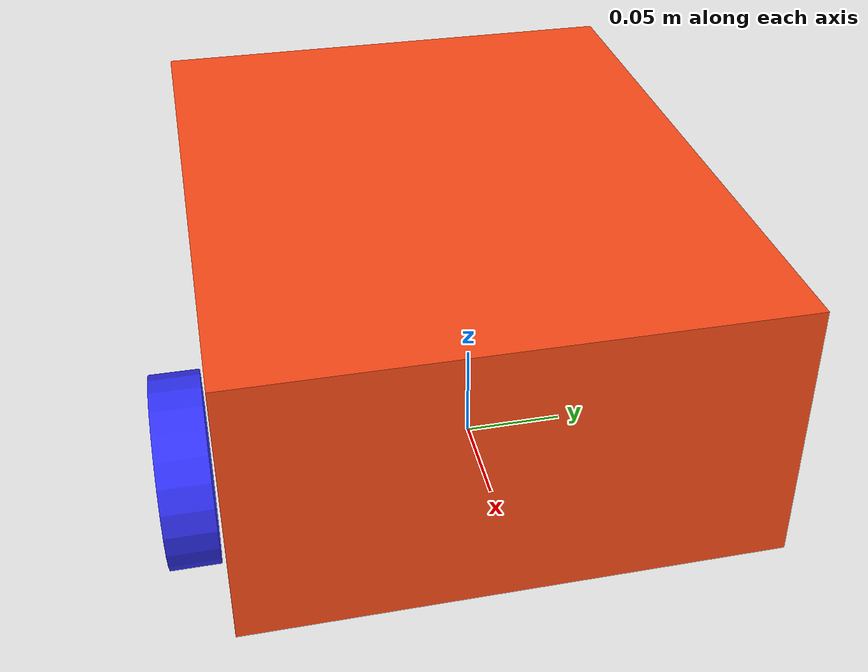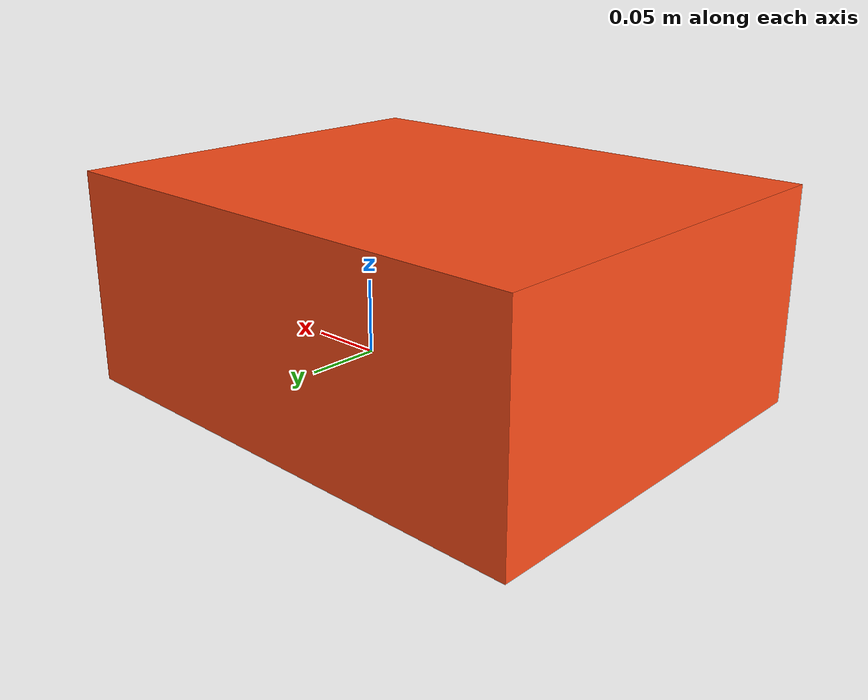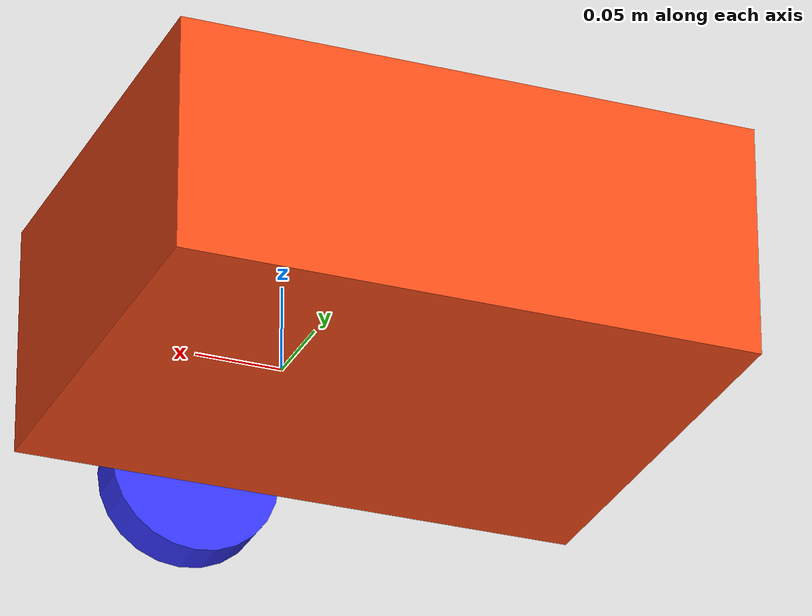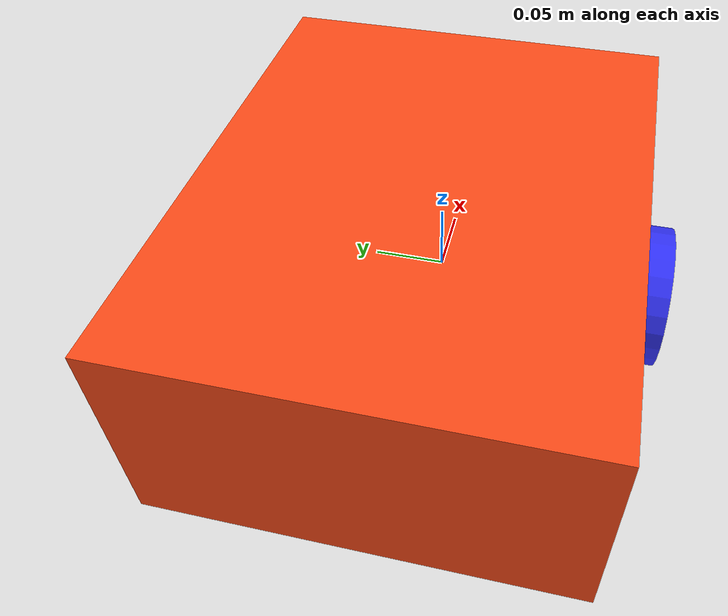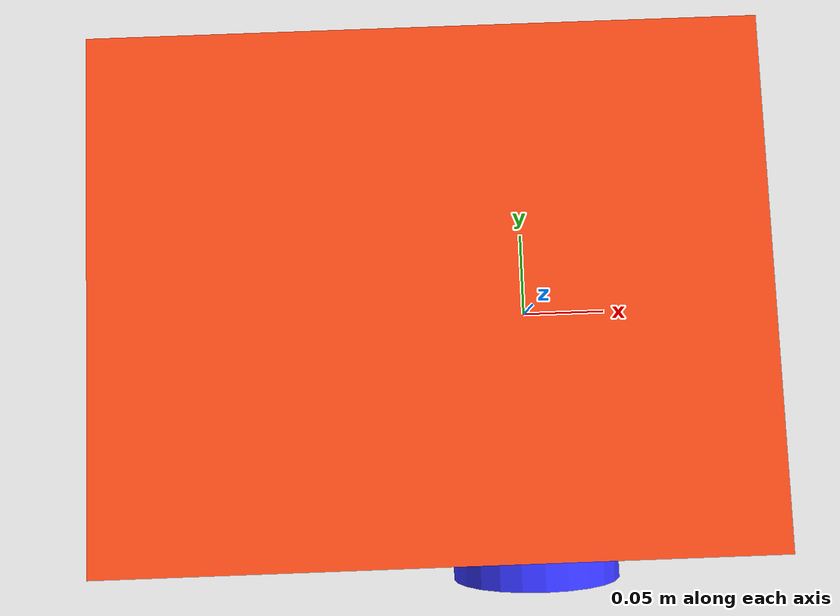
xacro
<?xml version="1.0"?>
<robot xmlns:xacro="http://www.ros.org/wiki/xacro" >

    <xacro:include filename="inertial_macros.xacro"/>

    <!-- The importance of Xacro is that it allows you to define variables that you can
    use in your xacro file, this allows you to make changes quite easily -->
    <xacro:property name="chassis_length" value="0.335"/>
    <xacro:property name="chassis_width" value="0.265"/>
    <xacro:property name="chassis_height" value="0.138"/>
    <xacro:property name="chassis_mass" value="1.0"/>
    <xacro:property name="wheel_radius" value="0.05"/>
    <xacro:property name="wheel_thickness" value="0.026"/>
    <xacro:property name="wheel_mass" value="0.05"/>
    <xacro:property name="wheel_offset_x" value="0.226"/>
    <xacro:property name="wheel_offset_y" value="0.1485"/>
    <xacro:property name="wheel_offset_z" value="0.01"/>
    <xacro:property name="caster_wheel_radius" value="0.03"/>
    <xacro:property name="caster_wheel_mass" value="0.01"/>
    <xacro:property name="caster_wheel_offset_x" value="0.075"/>
    <xacro:property name="caster_wheel_offset_z" value="${wheel_offset_z - wheel_radius + caster_wheel_radius}"/>

    <!-- material tags allow you to assign color to your robot links which are visible in Rviz,
    However, for gazebo you have to assign color in a different way as you will observe in this file -->
    <material name="white">
        <color rgba="1 1 1 1" />
    </material>

    <material name="orange">
        <color rgba="1 0.3 0.1 1"/>
    </material>

    <material name="blue">
        <color rgba="0.2 0.2 1 1"/>
    </material>

    <material name="black">
        <color rgba="0 0 0 1"/>
    </material>

    <material name="red">
        <color rgba="1 0 0 1"/>
    </material>

    <!-- BASE LINK -->
    <!-- Base link is the link that is attached to the robot, it is the parent link of all other links in the robot,
    You donot have to assign any geometry to the base link, it is just a reference link -->

    <link name="base_link">
    </link>

    <!-- BASE_FOOTPRINT LINK -->

    <link name="base_footprint">
    </link>

    <joint name="base_footprint_joint" type="fixed">
        <parent link="base_link"/>
        <child link="base_footprint"/>
        <origin xyz="0 0 0" rpy="0 0 0"/>
    </joint>

    <!-- CHASSIS LINK -->
    <link name="chassis">
        <visual>
            <origin xyz="${chassis_length/2} 0 ${chassis_height/2}"/>
            <geometry>
                <box size="${chassis_length} ${chassis_width} ${chassis_height}"/>
            </geometry>
            <material name="orange"/>
        </visual>
        <collision>
            <origin xyz="${chassis_length/2} 0 ${chassis_height/2}"/>
            <geometry>
                <box size="${chassis_length} ${chassis_width} ${chassis_height}"/>
            </geometry>
        </collision>
        <xacro:inertial_box mass="0.5" x="${chassis_length}" y="${chassis_width}" z="${chassis_height}">
            <origin xyz="${chassis_length/2} 0 ${chassis_height/2}" rpy="0 0 0"/>
        </xacro:inertial_box>
    </link>

    <gazebo reference="chassis">
        <material>Gazebo/Orange</material>
    </gazebo>

    <joint name="chassis_joint" type="fixed">
        <parent link="base_link"/>
        <child link="chassis"/>
        <origin xyz="${-wheel_offset_x} 0 ${-wheel_offset_z}"/>
    </joint>

    <!-- RIGHT WHEEL LINK -->
    <link name="right_wheel">
        <visual>
            <geometry>
                <cylinder radius="${wheel_radius}" length="${wheel_thickness}"/>
            </geometry>
            <material name="blue"/>
        </visual>
        <collision>
            <geometry>
                <cylinder radius="${wheel_radius}" length="${wheel_thickness}"/>
            </geometry>
        </collision>
        <xacro:inertial_cylinder mass="${wheel_mass}" length="${wheel_thickness}" radius="${wheel_radius}">
            <origin xyz="0 0 0" rpy="0 0 0"/>
        </xacro:inertial_cylinder>
    </link>

    <gazebo reference="right_wheel">
        <material>Gazebo/Blue</material>
    </gazebo>

    <joint name="right_wheel_joint" type="continuous">
        <parent link="base_link"/>
        <child link="right_wheel"/>
        <origin xyz="0 ${-wheel_offset_y} 0" rpy="${pi/2} 0 0" />
        <axis xyz="0 0 -1"/>
    </joint>

</robot>
